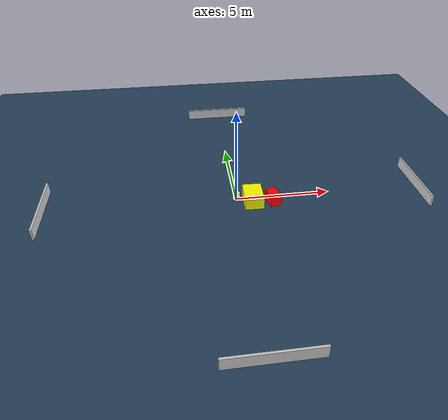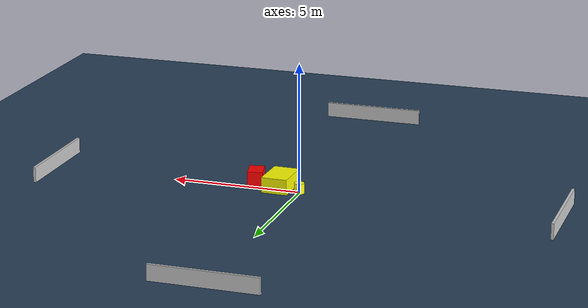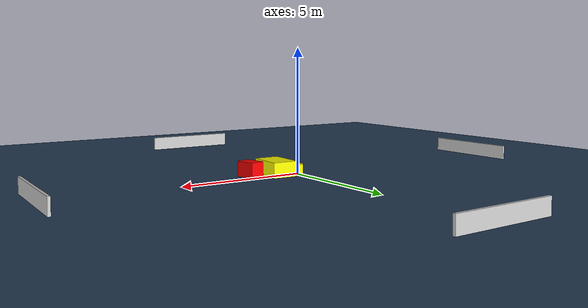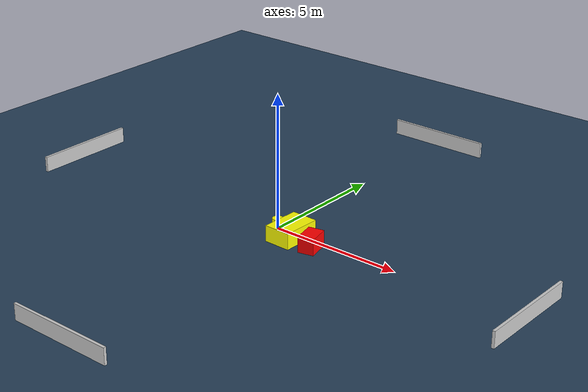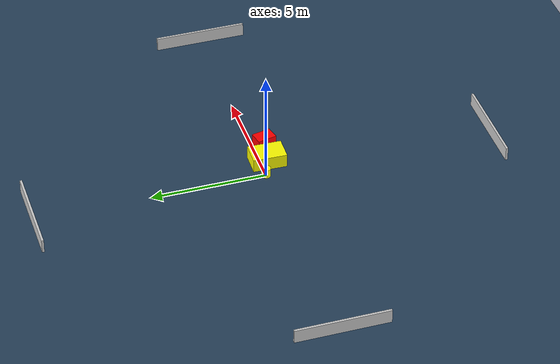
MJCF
<?xml version="1.0" ?>
<mujoco model="generated_environment">
  <option timestep="0.01" integrator="RK4" cone="elliptic"/>
  <default>
    <geom density="1"/>
  </default>
  <asset>
    <texture builtin="gradient" height="3072" name="skybox" rgb1="0.3 0.5 0.7" rgb2="0 0 0" type="skybox" width="512"/>
    <texture builtin="checker" height="300" name="groundplane" rgb1="0.2 0.3 0.4" rgb2="0.1 0.2 0.3" type="2d" width="300"/>
    <material name="groundplane" reflectance="0.2" texrepeat="5 5" texture="groundplane"/>
  </asset>
  <worldbody>
    <light dir="0 0 -1" directional="true" pos="0 0 1.5"/>
    <geom condim="3" friction="0.5 0.005 0.001" material="groundplane" name="floor" pos="0 0 0" size="0 0 0.05" type="plane"/>
    <body name="walls">
      <geom name="wall_1" condim="4" pos="-10.0 0.0 0.3" rgba="0.800000011920929 0.800000011920929 0.800000011920929 1.0" size="0.05 2.0 0.3" type="box"/>
      <geom name="wall_2" condim="4" pos="10.0 0.0 0.3" rgba="0.800000011920929 0.800000011920929 0.800000011920929 1.0" size="0.05 2.0 0.3" type="box"/>
      <geom name="wall_3" condim="4" pos="0.0 -10.0 0.3" rgba="0.800000011920929 0.800000011920929 0.800000011920929 1.0" size="2.0 0.05 0.3" type="box"/>
      <geom name="wall_4" condim="4" pos="0.0 10.0 0.3" rgba="0.800000011920929 0.800000011920929 0.800000011920929 1.0" size="2.0 0.05 0.3" type="box"/>
    </body>
    <body name="robot">
      <joint name="joint_x" type="slide" pos="0 0 0" axis="1 0 0"/>
      <joint name="joint_y" type="slide" pos="0 0 0" axis="0 1 0"/>
      <geom name="robot" type="cylinder" pos="0.0 0.0 0.2" size="0.2 0.2 0.0" mass="5.0" friction="1.0 0.005 0.0001" condim="4" rgba="1.0 1.0 0.0 1.0"/>
    </body>
    <body name="obstacle_1_movable">
      <geom name="obstacle_1_movable" condim="4" pos="0.8508949052779027 -0.313542687064804 0.3" euler="0 0 178.54577218939562" friction="0.0 0.005 0.001" rgba="1.0 1.0 0.0 1.0" size="0.5020090584437359 0.7338247821842032 0.3" type="box" mass="0.1"/>
      <joint type="free"/>
    </body>
    <body name="obstacle_2_static">
      <geom name="obstacle_2_static" condim="4" pos="1.8967641780735185 -0.49979022150179425 0.3" euler="0 0 102.69596559489123" friction="0.0 0.005 0.001" rgba="1.0 0.0 0.0 1.0" size="0.4194302401899857 0.29221268632880737 0.3" type="box"/>
    </body>
  </worldbody>
  <actuator>
    <motor name="actuator_x" joint="joint_x" gear="1" ctrlrange="-1 1"/>
    <motor name="actuator_y" joint="joint_y" gear="1" ctrlrange="-1 1"/>
  </actuator>
</mujoco>
